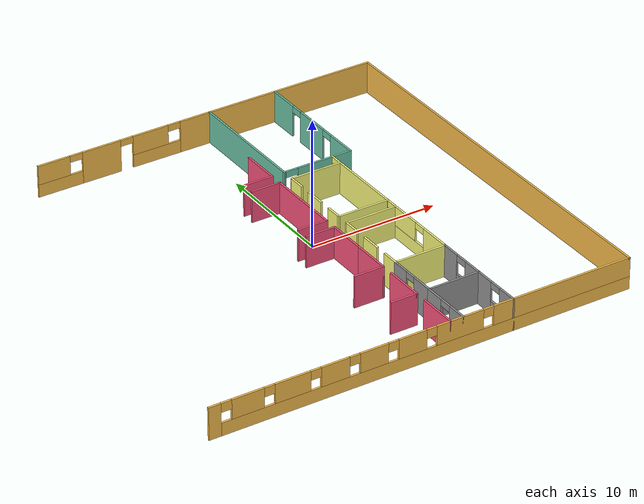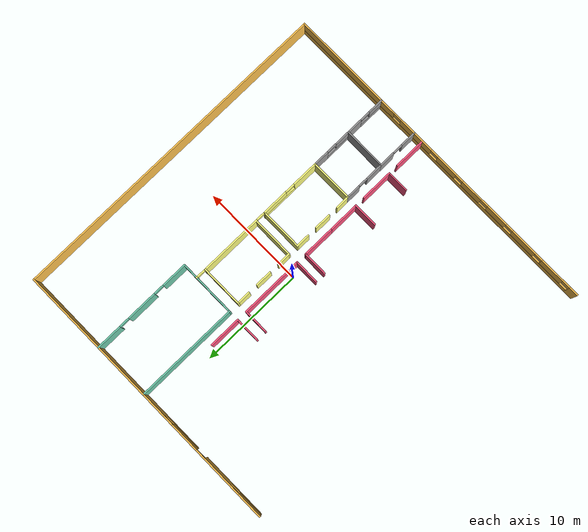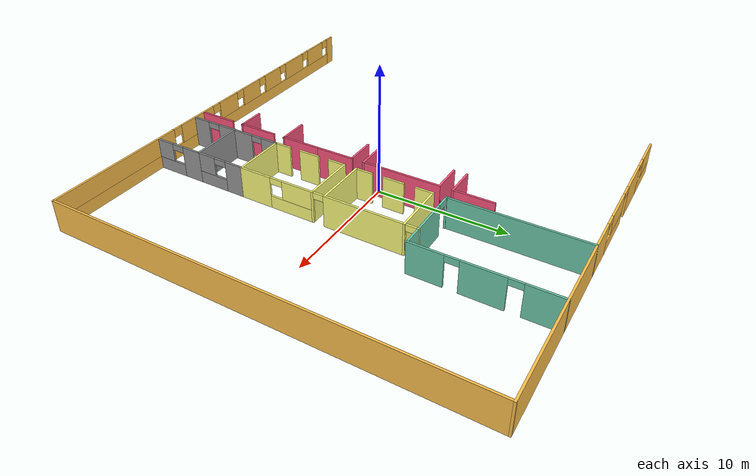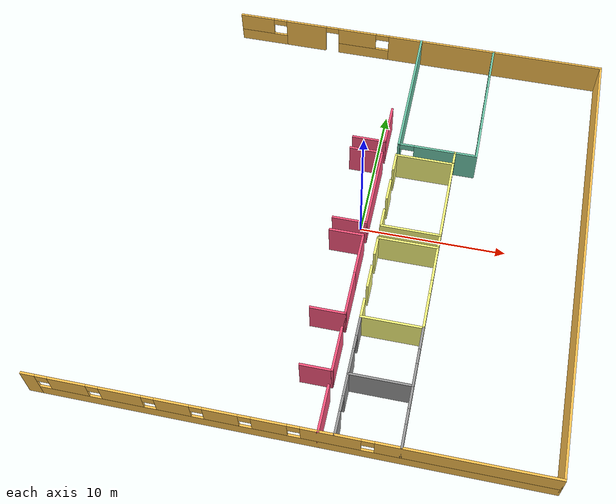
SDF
<sdf version="1.6">
 <model name="myWorld">
  <pose>-1.5 0 0 0 -0 0</pose>
  <link name="Wall_0">
   <pose>0 -16 0 0 -0 0</pose>
   <visual name="Wall_0_Visual_0">
    <pose>-16.1125 0 1.25 0 -0 0</pose>
    <geometry><box><size>0.925 0.15 2.5</size></box></geometry>
    <material>
     <script><uri>file://media/materials/scripts/gazebo.material</uri><name>Gazebo/Grey</name></script>
     <ambient>1 0.764706 0.305882 1</ambient>
    </material>
    <meta><layer>0</layer></meta>
   </visual>
   <collision name="Wall_0_Collision_0">
    <geometry><box><size>0.925 0.15 2.5</size></box></geometry>
    <pose>-16.1125 0 1.25 0 -0 0</pose>
   </collision>
   <visual name="Wall_0_Visual_1">
    <pose>0.4625 0 0.5 0 -0 0</pose>
    <geometry><box><size>32.225 0.15 1</size></box></geometry>
    <material>
     <script><uri>file://media/materials/scripts/gazebo.material</uri><name>Gazebo/Grey</name></script>
     <ambient>1 0.764706 0.305882 1</ambient>
    </material>
    <meta><layer>0</layer></meta>
   </visual>
   <collision name="Wall_0_Collision_1">
    <geometry><box><size>32.225 0.15 1</size></box></geometry>
    <pose>0.4625 0 0.5 0 -0 0</pose>
   </collision>
   <visual name="Wall_0_Visual_2">
    <pose>-13.625 0 1.75 0 -0 0</pose>
    <geometry><box><size>2.45 0.15 1.5</size></box></geometry>
    <material>
     <script><uri>file://media/materials/scripts/gazebo.material</uri><name>Gazebo/Grey</name></script>
     <ambient>1 0.764706 0.305882 1</ambient>
    </material>
    <meta><layer>0</layer></meta>
   </visual>
   <collision name="Wall_0_Collision_2">
    <geometry><box><size>2.45 0.15 1.5</size></box></geometry>
    <pose>-13.625 0 1.75 0 -0 0</pose>
   </collision>
   <visual name="Wall_0_Visual_3">
    <pose>-10.25 0 1.75 0 -0 0</pose>
    <geometry><box><size>2.7 0.15 1.5</size></box></geometry>
    <material>
     <script><uri>file://media/materials/scripts/gazebo.material</uri><name>Gazebo/Grey</name></script>
     <ambient>1 0.764706 0.305882 1</ambient>
    </material>
    <meta><layer>0</layer></meta>
   </visual>
   <collision name="Wall_0_Collision_3">
    <geometry><box><size>2.7 0.15 1.5</size></box></geometry>
    <pose>-10.25 0 1.75 0 -0 0</pose>
   </collision>
   <visual name="Wall_0_Visual_4">
    <pose>-7 0 1.75 0 -0 0</pose>
    <geometry><box><size>2.2 0.15 1.5</size></box></geometry>
    <material>
     <script><uri>file://media/materials/scripts/gazebo.material</uri><name>Gazebo/Grey</name></script>
     <ambient>1 0.764706 0.305882 1</ambient>
    </material>
    <meta><layer>0</layer></meta>
   </visual>
   <collision name="Wall_0_Collision_4">
    <geometry><box><size>2.2 0.15 1.5</size></box></geometry>
    <pose>-7 0 1.75 0 -0 0</pose>
   </collision>
   <visual name="Wall_0_Visual_5">
    <pose>-4 0 1.75 0 -0 0</pose>
    <geometry><box><size>2.2 0.15 1.5</size></box></geometry>
    <material>
     <script><uri>file://media/materials/scripts/gazebo.material</uri><name>Gazebo/Grey</name></script>
     <ambient>1 0.764706 0.305882 1</ambient>
    </material>
    <meta><layer>0</layer></meta>
   </visual>
   <collision name="Wall_0_Collision_5">
    <geometry><box><size>2.2 0.15 1.5</size></box></geometry>
    <pose>-4 0 1.75 0 -0 0</pose>
   </collision>
   <visual name="Wall_0_Visual_6">
    <pose>-1 0 1.75 0 -0 0</pose>
    <geometry><box><size>2.2 0.15 1.5</size></box></geometry>
    <material>
     <script><uri>file://media/materials/scripts/gazebo.material</uri><name>Gazebo/Grey</name></script>
     <ambient>1 0.764706 0.305882 1</ambient>
    </material>
    <meta><layer>0</layer></meta>
   </visual>
   <collision name="Wall_0_Collision_6">
    <geometry><box><size>2.2 0.15 1.5</size></box></geometry>
    <pose>-1 0 1.75 0 -0 0</pose>
   </collision>
   <visual name="Wall_0_Visual_7">
    <pose>2.75 0 1.75 0 -0 0</pose>
    <geometry><box><size>3.7 0.15 1.5</size></box></geometry>
    <material>
     <script><uri>file://media/materials/scripts/gazebo.material</uri><name>Gazebo/Grey</name></script>
     <ambient>1 0.764706 0.305882 1</ambient>
    </material>
    <meta><layer>0</layer></meta>
   </visual>
   <collision name="Wall_0_Collision_7">
    <geometry><box><size>3.7 0.15 1.5</size></box></geometry>
    <pose>2.75 0 1.75 0 -0 0</pose>
   </collision>
   <visual name="Wall_0_Visual_8">
    <pose>10.9875 0 1.75 0 -0 0</pose>
    <geometry><box><size>11.175 0.15 1.5</size></box></geometry>
    <material>
     <script><uri>file://media/materials/scripts/gazebo.material</uri><name>Gazebo/Grey</name></script>
     <ambient>1 0.764706 0.305882 1</ambient>
    </material>
    <meta><layer>0</layer></meta>
   </visual>
   <collision name="Wall_0_Collision_8">
    <geometry><box><size>11.175 0.15 1.5</size></box></geometry>
    <pose>10.9875 0 1.75 0 -0 0</pose>
   </collision>
   <visual name="Wall_0_Visual_9">
    <pose>-15.25 0 2.15 0 -0 0</pose>
    <geometry><box><size>0.8 0.15 0.7</size></box></geometry>
    <material>
     <script><uri>file://media/materials/scripts/gazebo.material</uri><name>Gazebo/Grey</name></script>
     <ambient>1 0.764706 0.305882 1</ambient>
    </material>
    <meta><layer>0</layer></meta>
   </visual>
   <collision name="Wall_0_Collision_9">
    <geometry><box><size>0.8 0.15 0.7</size></box></geometry>
    <pose>-15.25 0 2.15 0 -0 0</pose>
   </collision>
   <visual name="Wall_0_Visual_10">
    <pose>-12 0 2.15 0 -0 0</pose>
    <geometry><box><size>0.8 0.15 0.7</size></box></geometry>
    <material>
     <script><uri>file://media/materials/scripts/gazebo.material</uri><name>Gazebo/Grey</name></script>
     <ambient>1 0.764706 0.305882 1</ambient>
    </material>
    <meta><layer>0</layer></meta>
   </visual>
   <collision name="Wall_0_Collision_10">
    <geometry><box><size>0.8 0.15 0.7</size></box></geometry>
    <pose>-12 0 2.15 0 -0 0</pose>
   </collision>
   <visual name="Wall_0_Visual_11">
    <pose>-8.5 0 2.15 0 -0 0</pose>
    <geometry><box><size>0.8 0.15 0.7</size></box></geometry>
    <material>
     <script><uri>file://media/materials/scripts/gazebo.material</uri><name>Gazebo/Grey</name></script>
     <ambient>1 0.764706 0.305882 1</ambient>
    </material>
    <meta><layer>0</layer></meta>
   </visual>
   <collision name="Wall_0_Collision_11">
    <geometry><box><size>0.8 0.15 0.7</size></box></geometry>
    <pose>-8.5 0 2.15 0 -0 0</pose>
   </collision>
   <visual name="Wall_0_Visual_12">
    <pose>-5.5 0 2.15 0 -0 0</pose>
    <geometry><box><size>0.8 0.15 0.7</size></box></geometry>
    <material>
     <script><uri>file://media/materials/scripts/gazebo.material</uri><name>Gazebo/Grey</name></script>
     <ambient>1 0.764706 0.305882 1</ambient>
    </material>
    <meta><layer>0</layer></meta>
   </visual>
   <collision name="Wall_0_Collision_12">
    <geometry><box><size>0.8 0.15 0.7</size></box></geometry>
    <pose>-5.5 0 2.15 0 -0 0</pose>
   </collision>
   <visual name="Wall_0_Visual_13">
    <pose>-2.5 0 2.15 0 -0 0</pose>
    <geometry><box><size>0.8 0.15 0.7</size></box></geometry>
    <material>
     <script><uri>file://media/materials/scripts/gazebo.material</uri><name>Gazebo/Grey</name></script>
     <ambient>1 0.764706 0.305882 1</ambient>
    </material>
    <meta><layer>0</layer></meta>
   </visual>
   <collision name="Wall_0_Collision_13">
    <geometry><box><size>0.8 0.15 0.7</size></box></geometry>
    <pose>-2.5 0 2.15 0 -0 0</pose>
   </collision>
   <visual name="Wall_0_Visual_14">
    <pose>0.5 0 2.15 0 -0 0</pose>
    <geometry><box><size>0.8 0.15 0.7</size></box></geometry>
    <material>
     <script><uri>file://media/materials/scripts/gazebo.material</uri><name>Gazebo/Grey</name></script>
     <ambient>1 0.764706 0.305882 1</ambient>
    </material>
    <meta><layer>0</layer></meta>
   </visual>
   <collision name="Wall_0_Collision_14">
    <geometry><box><size>0.8 0.15 0.7</size></box></geometry>
    <pose>0.5 0 2.15 0 -0 0</pose>
   </collision>
   <visual name="Wall_0_Visual_15">
    <pose>5 0 2.15 0 -0 0</pose>
    <geometry><box><size>0.8 0.15 0.7</size></box></geometry>
    <material>
     <script><uri>file://media/materials/scripts/gazebo.material</uri><name>Gazebo/Grey</name></script>
     <ambient>1 0.764706 0.305882 1</ambient>
    </material>
    <meta><layer>0</layer></meta>
   </visual>
   <collision name="Wall_0_Collision_15">
    <geometry><box><size>0.8 0.15 0.7</size></box></geometry>
    <pose>5 0 2.15 0 -0 0</pose>
   </collision>
  </link>
  <link name="Wall_110">
   <collision name="Wall_110_Collision">
    <geometry><box><size>3.15 0.15 2.5</size></box></geometry>
    <pose>0 0 1.25 0 -0 0</pose>
   </collision>
   <visual name="Wall_110_Visual">
    <pose>0 0 1.25 0 -0 0</pose>
    <geometry><box><size>3.15 0.15 2.5</size></box></geometry>
    <material>
     <script><uri>file://media/materials/scripts/gazebo.material</uri><name>Gazebo/Grey</name></script>
     <ambient>1 0.333333 0.498039 1</ambient>
    </material>
    <meta><layer>0</layer></meta>
   </visual>
   <pose>2 -10.5 0 0 0 -1.5708</pose>
  </link>
  <link name="Wall_120">
   <collision name="Wall_120_Collision">
    <geometry><box><size>2.15 0.15 2.5</size></box></geometry>
    <pose>0 0 1.25 0 -0 0</pose>
   </collision>
   <visual name="Wall_120_Visual">
    <pose>0 0 1.25 0 -0 0</pose>
    <geometry><box><size>2.15 0.15 2.5</size></box></geometry>
    <material>
     <script><uri>file://media/materials/scripts/gazebo.material</uri><name>Gazebo/Grey</name></script>
     <ambient>1 0.333333 0.498039 1</ambient>
    </material>
    <meta><layer>0</layer></meta>
   </visual>
   <pose>1 -12 0 0 -0 0</pose>
  </link>
  <link name="Wall_127">
   <collision name="Wall_127_Collision">
    <geometry><box><size>3.15 0.15 2.5</size></box></geometry>
    <pose>0 0 1.25 0 -0 0</pose>
   </collision>
   <visual name="Wall_127_Visual">
    <pose>0 0 1.25 0 -0 0</pose>
    <geometry><box><size>3.15 0.15 2.5</size></box></geometry>
    <material>
     <script><uri>file://media/materials/scripts/gazebo.material</uri><name>Gazebo/Grey</name></script>
     <ambient>1 0.333333 0.498039 1</ambient>
    </material>
    <meta><layer>0</layer></meta>
   </visual>
   <pose>2 -6.5 0 0 0 -1.5708</pose>
  </link>
  <link name="Wall_128">
   <collision name="Wall_128_Collision">
    <geometry><box><size>2.4 0.15 2.5</size></box></geometry>
    <pose>0 0 1.25 0 -0 0</pose>
   </collision>
   <visual name="Wall_128_Visual">
    <pose>0 0 1.25 0 -0 0</pose>
    <geometry><box><size>2.4 0.15 2.5</size></box></geometry>
    <material>
     <script><uri>file://media/materials/scripts/gazebo.material</uri><name>Gazebo/Grey</name></script>
     <ambient>1 0.333333 0.498039 1</ambient>
    </material>
    <meta><layer>0</layer></meta>
   </visual>
   <pose>0.875 -8 0 0 -0 3.14159</pose>
  </link>
  <link name="Wall_132">
   <collision name="Wall_132_Collision">
    <geometry><box><size>2.4 0.15 2.5</size></box></geometry>
    <pose>0 0 1.25 0 -0 0</pose>
   </collision>
   <visual name="Wall_132_Visual">
    <pose>0 0 1.25 0 -0 0</pose>
    <geometry><box><size>2.4 0.15 2.5</size></box></geometry>
    <material>
     <script><uri>file://media/materials/scripts/gazebo.material</uri><name>Gazebo/Grey</name></script>
     <ambient>1 0.333333 0.498039 1</ambient>
    </material>
    <meta><layer>0</layer></meta>
   </visual>
   <pose>0.875 -2 0 0 -0 0</pose>
  </link>
  <link name="Wall_133">
   <collision name="Wall_133_Collision">
    <geometry><box><size>3.15 0.15 2.5</size></box></geometry>
    <pose>0 0 1.25 0 -0 0</pose>
   </collision>
   <visual name="Wall_133_Visual">
    <pose>0 0 1.25 0 -0 0</pose>
    <geometry><box><size>3.15 0.15 2.5</size></box></geometry>
    <material>
     <script><uri>file://media/materials/scripts/gazebo.material</uri><name>Gazebo/Grey</name></script>
     <ambient>1 0.333333 0.498039 1</ambient>
    </material>
    <meta><layer>0</layer></meta>
   </visual>
   <pose>2 -3.5 0 0 0 -1.5708</pose>
  </link>
  <link name="Wall_137">
   <collision name="Wall_137_Collision">
    <geometry><box><size>2.4 0.15 2.5</size></box></geometry>
    <pose>0 0 1.25 0 -0 0</pose>
   </collision>
   <visual name="Wall_137_Visual">
    <pose>0 0 1.25 0 -0 0</pose>
    <geometry><box><size>2.4 0.15 2.5</size></box></geometry>
    <material>
     <script><uri>file://media/materials/scripts/gazebo.material</uri><name>Gazebo/Grey</name></script>
     <ambient>1 0.333333 0.498039 1</ambient>
    </material>
    <meta><layer>0</layer></meta>
   </visual>
   <pose>0.875 5 0 0 -0 0</pose>
  </link>
  <link name="Wall_138">
   <collision name="Wall_138_Collision">
    <geometry><box><size>6.15 0.15 2.5</size></box></geometry>
    <pose>0 0 1.25 0 -0 0</pose>
   </collision>
   <visual name="Wall_138_Visual">
    <pose>0 0 1.25 0 -0 0</pose>
    <geometry><box><size>6.15 0.15 2.5</size></box></geometry>
    <material>
     <script><uri>file://media/materials/scripts/gazebo.material</uri><name>Gazebo/Grey</name></script>
     <ambient>1 0.333333 0.498039 1</ambient>
    </material>
    <meta><layer>0</layer></meta>
   </visual>
   <pose>2 2 0 0 0 -1.5708</pose>
  </link>
  <link name="Wall_139">
   <collision name="Wall_139_Collision">
    <geometry><box><size>2.4 0.15 2.5</size></box></geometry>
    <pose>0 0 1.25 0 -0 0</pose>
   </collision>
   <visual name="Wall_139_Visual">
    <pose>0 0 1.25 0 -0 0</pose>
    <geometry><box><size>2.4 0.15 2.5</size></box></geometry>
    <material>
     <script><uri>file://media/materials/scripts/gazebo.material</uri><name>Gazebo/Grey</name></script>
     <ambient>1 0.333333 0.498039 1</ambient>
    </material>
    <meta><layer>0</layer></meta>
   </visual>
   <pose>0.875 -1 0 0 -0 3.14159</pose>
  </link>
  <link name="Wall_144">
   <collision name="Wall_144_Collision">
    <geometry><box><size>3.15 0.15 2.5</size></box></geometry>
    <pose>0 0 1.25 0 -0 0</pose>
   </collision>
   <visual name="Wall_144_Visual">
    <pose>0 0 1.25 0 -0 0</pose>
    <geometry><box><size>3.15 0.15 2.5</size></box></geometry>
    <material>
     <script><uri>file://media/materials/scripts/gazebo.material</uri><name>Gazebo/Grey</name></script>
     <ambient>1 0.333333 0.498039 1</ambient>
    </material>
    <meta><layer>0</layer></meta>
   </visual>
   <pose>2 7.5 0 0 0 -1.5708</pose>
  </link>
  <link name="Wall_145">
   <collision name="Wall_145_Collision">
    <geometry><box><size>2.4 0.15 2.5</size></box></geometry>
    <pose>0 0 1.25 0 -0 0</pose>
   </collision>
   <visual name="Wall_145_Visual">
    <pose>0 0 1.25 0 -0 0</pose>
    <geometry><box><size>2.4 0.15 2.5</size></box></geometry>
    <material>
     <script><uri>file://media/materials/scripts/gazebo.material</uri><name>Gazebo/Grey</name></script>
     <ambient>1 0.333333 0.498039 1</ambient>
    </material>
    <meta><layer>0</layer></meta>
   </visual>
   <pose>0.875 6 0 0 -0 3.14159</pose>
  </link>
  <link name="Wall_151">
   <pose>3 -14 0 0 -0 1.5708</pose>
   <visual name="Wall_151_Visual_0">
    <pose>-1.2875 0 1.25 0 -0 0</pose>
    <geometry><box><size>1.575 0.15 2.5</size></box></geometry>
    <material>
     <script><uri>file://media/materials/scripts/gazebo.material</uri><name>Gazebo/Grey</name></script>
     <ambient>1 1 1 1</ambient>
    </material>
    <meta><layer>0</layer></meta>
   </visual>
   <collision name="Wall_151_Collision_0">
    <geometry><box><size>1.575 0.15 2.5</size></box></geometry>
    <pose>-1.2875 0 1.25 0 -0 0</pose>
   </collision>
   <visual name="Wall_151_Visual_1">
    <pose>1.2875 0 1.25 0 -0 0</pose>
    <geometry><box><size>1.575 0.15 2.5</size></box></geometry>
    <material>
     <script><uri>file://media/materials/scripts/gazebo.material</uri><name>Gazebo/Grey</name></script>
     <ambient>1 1 1 1</ambient>
    </material>
    <meta><layer>0</layer></meta>
   </visual>
   <collision name="Wall_151_Collision_1">
    <geometry><box><size>1.575 0.15 2.5</size></box></geometry>
    <pose>1.2875 0 1.25 0 -0 0</pose>
   </collision>
   <visual name="Wall_151_Visual_2">
    <pose>0 0 2.25 0 -0 0</pose>
    <geometry><box><size>1 0.15 0.5</size></box></geometry>
    <material>
     <script><uri>file://media/materials/scripts/gazebo.material</uri><name>Gazebo/Grey</name></script>
     <ambient>1 1 1 1</ambient>
    </material>
    <meta><layer>0</layer></meta>
   </visual>
   <collision name="Wall_151_Collision_2">
    <geometry><box><size>1 0.15 0.5</size></box></geometry>
    <pose>0 0 2.25 0 -0 0</pose>
   </collision>
  </link>
  <link name="Wall_152">
   <collision name="Wall_152_Collision">
    <geometry><box><size>4.15 0.15 2.5</size></box></geometry>
    <pose>0 0 1.25 0 -0 0</pose>
   </collision>
   <visual name="Wall_152_Visual">
    <pose>0 0 1.25 0 -0 0</pose>
    <geometry><box><size>4.15 0.15 2.5</size></box></geometry>
    <material>
     <script><uri>file://media/materials/scripts/gazebo.material</uri><name>Gazebo/Grey</name></script>
     <ambient>1 1 1 1</ambient>
    </material>
    <meta><layer>0</layer></meta>
   </visual>
   <pose>5 -12 0 0 -0 0</pose>
  </link>
  <link name="Wall_153">
   <pose>7 -14 0 0 0 -1.5708</pose>
   <visual name="Wall_153_Visual_0">
    <pose>-1.2825 0 1.25 0 -0 0</pose>
    <geometry><box><size>1.585 0.15 2.5</size></box></geometry>
    <material>
     <script><uri>file://media/materials/scripts/gazebo.material</uri><name>Gazebo/Grey</name></script>
     <ambient>1 1 1 1</ambient>
    </material>
    <meta><layer>0</layer></meta>
   </visual>
   <collision name="Wall_153_Collision_0">
    <geometry><box><size>1.585 0.15 2.5</size></box></geometry>
    <pose>-1.2825 0 1.25 0 -0 0</pose>
   </collision>
   <visual name="Wall_153_Visual_1">
    <pose>0.7925 0 0.5 0 -0 0</pose>
    <geometry><box><size>2.565 0.15 1</size></box></geometry>
    <material>
     <script><uri>file://media/materials/scripts/gazebo.material</uri><name>Gazebo/Grey</name></script>
     <ambient>1 1 1 1</ambient>
    </material>
    <meta><layer>0</layer></meta>
   </visual>
   <collision name="Wall_153_Collision_1">
    <geometry><box><size>2.565 0.15 1</size></box></geometry>
    <pose>0.7925 0 0.5 0 -0 0</pose>
   </collision>
   <visual name="Wall_153_Visual_2">
    <pose>1.2925 0 1.75 0 -0 0</pose>
    <geometry><box><size>1.565 0.15 1.5</size></box></geometry>
    <material>
     <script><uri>file://media/materials/scripts/gazebo.material</uri><name>Gazebo/Grey</name></script>
     <ambient>1 1 1 1</ambient>
    </material>
    <meta><layer>0</layer></meta>
   </visual>
   <collision name="Wall_153_Collision_2">
    <geometry><box><size>1.565 0.15 1.5</size></box></geometry>
    <pose>1.2925 0 1.75 0 -0 0</pose>
   </collision>
   <visual name="Wall_153_Visual_3">
    <pose>0.01 0 2.25 0 -0 0</pose>
    <geometry><box><size>1 0.15 0.5</size></box></geometry>
    <material>
     <script><uri>file://media/materials/scripts/gazebo.material</uri><name>Gazebo/Grey</name></script>
     <ambient>1 1 1 1</ambient>
    </material>
    <meta><layer>0</layer></meta>
   </visual>
   <collision name="Wall_153_Collision_3">
    <geometry><box><size>1 0.15 0.5</size></box></geometry>
    <pose>0.01 0 2.25 0 -0 0</pose>
   </collision>
  </link>
  <link name="Wall_157">
   <pose>3 -10 0 0 -0 1.5708</pose>
   <visual name="Wall_157_Visual_0">
    <pose>-1.1775 0 1.25 0 -0 0</pose>
    <geometry><box><size>1.795 0.15 2.5</size></box></geometry>
    <material>
     <script><uri>file://media/materials/scripts/gazebo.material</uri><name>Gazebo/Grey</name></script>
     <ambient>1 1 1 1</ambient>
    </material>
    <meta><layer>0</layer></meta>
   </visual>
   <collision name="Wall_157_Collision_0">
    <geometry><box><size>1.795 0.15 2.5</size></box></geometry>
    <pose>-1.1775 0 1.25 0 -0 0</pose>
   </collision>
   <visual name="Wall_157_Visual_1">
    <pose>1.3475 0 1.25 0 -0 0</pose>
    <geometry><box><size>1.455 0.15 2.5</size></box></geometry>
    <material>
     <script><uri>file://media/materials/scripts/gazebo.material</uri><name>Gazebo/Grey</name></script>
     <ambient>1 1 1 1</ambient>
    </material>
    <meta><layer>0</layer></meta>
   </visual>
   <collision name="Wall_157_Collision_1">
    <geometry><box><size>1.455 0.15 2.5</size></box></geometry>
    <pose>1.3475 0 1.25 0 -0 0</pose>
   </collision>
   <visual name="Wall_157_Visual_2">
    <pose>0.17 0 2.25 0 -0 0</pose>
    <geometry><box><size>0.9 0.15 0.5</size></box></geometry>
    <material>
     <script><uri>file://media/materials/scripts/gazebo.material</uri><name>Gazebo/Grey</name></script>
     <ambient>1 1 1 1</ambient>
    </material>
    <meta><layer>0</layer></meta>
   </visual>
   <collision name="Wall_157_Collision_2">
    <geometry><box><size>0.9 0.15 0.5</size></box></geometry>
    <pose>0.17 0 2.25 0 -0 0</pose>
   </collision>
  </link>
  <link name="Wall_158">
   <collision name="Wall_158_Collision">
    <geometry><box><size>4.15 0.15 2.5</size></box></geometry>
    <pose>0 0 1.25 0 -0 0</pose>
   </collision>
   <visual name="Wall_158_Visual">
    <pose>0 0 1.25 0 -0 0</pose>
    <geometry><box><size>4.15 0.15 2.5</size></box></geometry>
    <material>
     <script><uri>file://media/materials/scripts/gazebo.material</uri><name>Gazebo/Grey</name></script>
     <ambient>1 1 0.498039 1</ambient>
    </material>
    <meta><layer>0</layer></meta>
   </visual>
   <pose>5 -8 0 0 -0 0</pose>
  </link>
  <link name="Wall_159">
   <pose>7 -10 0 0 0 -1.5708</pose>
   <visual name="Wall_159_Visual_0">
    <pose>-1.2875 0 1.25 0 -0 0</pose>
    <geometry><box><size>1.575 0.15 2.5</size></box></geometry>
    <material>
     <script><uri>file://media/materials/scripts/gazebo.material</uri><name>Gazebo/Grey</name></script>
     <ambient>1 1 1 1</ambient>
    </material>
    <meta><layer>0</layer></meta>
   </visual>
   <collision name="Wall_159_Collision_0">
    <geometry><box><size>1.575 0.15 2.5</size></box></geometry>
    <pose>-1.2875 0 1.25 0 -0 0</pose>
   </collision>
   <visual name="Wall_159_Visual_1">
    <pose>0.7875 0 0.5 0 -0 0</pose>
    <geometry><box><size>2.575 0.15 1</size></box></geometry>
    <material>
     <script><uri>file://media/materials/scripts/gazebo.material</uri><name>Gazebo/Grey</name></script>
     <ambient>1 1 1 1</ambient>
    </material>
    <meta><layer>0</layer></meta>
   </visual>
   <collision name="Wall_159_Collision_1">
    <geometry><box><size>2.575 0.15 1</size></box></geometry>
    <pose>0.7875 0 0.5 0 -0 0</pose>
   </collision>
   <visual name="Wall_159_Visual_2">
    <pose>1.2875 0 1.75 0 -0 0</pose>
    <geometry><box><size>1.575 0.15 1.5</size></box></geometry>
    <material>
     <script><uri>file://media/materials/scripts/gazebo.material</uri><name>Gazebo/Grey</name></script>
     <ambient>1 1 1 1</ambient>
    </material>
    <meta><layer>0</layer></meta>
   </visual>
   <collision name="Wall_159_Collision_2">
    <geometry><box><size>1.575 0.15 1.5</size></box></geometry>
    <pose>1.2875 0 1.75 0 -0 0</pose>
   </collision>
   <visual name="Wall_159_Visual_3">
    <pose>0 0 2.25 0 -0 0</pose>
    <geometry><box><size>1 0.15 0.5</size></box></geometry>
    <material>
     <script><uri>file://media/materials/scripts/gazebo.material</uri><name>Gazebo/Grey</name></script>
     <ambient>1 1 1 1</ambient>
    </material>
    <meta><layer>0</layer></meta>
   </visual>
   <collision name="Wall_159_Collision_3">
    <geometry><box><size>1 0.15 0.5</size></box></geometry>
    <pose>0 0 2.25 0 -0 0</pose>
   </collision>
  </link>
  <link name="Wall_161">
   <pose>7 -5 0 0 -0 1.5708</pose>
   <visual name="Wall_161_Visual_0">
    <pose>-1.7875 0 1.25 0 -0 0</pose>
    <geometry><box><size>2.575 0.15 2.5</size></box></geometry>
    <material>
     <script><uri>file://media/materials/scripts/gazebo.material</uri><name>Gazebo/Grey</name></script>
     <ambient>1 1 0.498039 1</ambient>
    </material>
    <meta><layer>0</layer></meta>
   </visual>
   <collision name="Wall_161_Collision_0">
    <geometry><box><size>2.575 0.15 2.5</size></box></geometry>
    <pose>-1.7875 0 1.25 0 -0 0</pose>
   </collision>
   <visual name="Wall_161_Visual_1">
    <pose>1.2875 0 0.5 0 -0 0</pose>
    <geometry><box><size>3.575 0.15 1</size></box></geometry>
    <material>
     <script><uri>file://media/materials/scripts/gazebo.material</uri><name>Gazebo/Grey</name></script>
     <ambient>1 1 0.498039 1</ambient>
    </material>
    <meta><layer>0</layer></meta>
   </visual>
   <collision name="Wall_161_Collision_1">
    <geometry><box><size>3.575 0.15 1</size></box></geometry>
    <pose>1.2875 0 0.5 0 -0 0</pose>
   </collision>
   <visual name="Wall_161_Visual_2">
    <pose>1.7875 0 1.75 0 -0 0</pose>
    <geometry><box><size>2.575 0.15 1.5</size></box></geometry>
    <material>
     <script><uri>file://media/materials/scripts/gazebo.material</uri><name>Gazebo/Grey</name></script>
     <ambient>1 1 0.498039 1</ambient>
    </material>
    <meta><layer>0</layer></meta>
   </visual>
   <collision name="Wall_161_Collision_2">
    <geometry><box><size>2.575 0.15 1.5</size></box></geometry>
    <pose>1.7875 0 1.75 0 -0 0</pose>
   </collision>
   <visual name="Wall_161_Visual_3">
    <pose>1.7875 0 1.75 0 -0 0</pose>
    <geometry><box><size>2.575 0.15 1.5</size></box></geometry>
    <material>
     <script><uri>file://media/materials/scripts/gazebo.material</uri><name>Gazebo/Grey</name></script>
     <ambient>1 1 0.498039 1</ambient>
    </material>
    <meta><layer>0</layer></meta>
   </visual>
   <collision name="Wall_161_Collision_3">
    <geometry><box><size>2.575 0.15 1.5</size></box></geometry>
    <pose>1.7875 0 1.75 0 -0 0</pose>
   </collision>
   <visual name="Wall_161_Visual_4">
    <pose>0 0 2.25 0 -0 0</pose>
    <geometry><box><size>1 0.15 0.5</size></box></geometry>
    <material>
     <script><uri>file://media/materials/scripts/gazebo.material</uri><name>Gazebo/Grey</name></script>
     <ambient>1 1 0.498039 1</ambient>
    </material>
    <meta><layer>0</layer></meta>
   </visual>
   <collision name="Wall_161_Collision_4">
    <geometry><box><size>1 0.15 0.5</size></box></geometry>
    <pose>0 0 2.25 0 -0 0</pose>
   </collision>
  </link>
  <link name="Wall_163">
   <collision name="Wall_163_Collision">
    <geometry><box><size>4.15 0.15 2.5</size></box></geometry>
    <pose>0 0 1.25 0 -0 0</pose>
   </collision>
   <visual name="Wall_163_Visual">
    <pose>0 0 1.25 0 -0 0</pose>
    <geometry><box><size>4.15 0.15 2.5</size></box></geometry>
    <material>
     <script><uri>file://media/materials/scripts/gazebo.material</uri><name>Gazebo/Grey</name></script>
     <ambient>1 1 0.498039 1</ambient>
    </material>
    <meta><layer>0</layer></meta>
   </visual>
   <pose>5 -2 0 0 -0 3.14159</pose>
  </link>
  <link name="Wall_165">
   <collision name="Wall_165_Collision">
    <geometry><box><size>1.4 0.15 2.5</size></box></geometry>
    <pose>0 0 1.25 0 -0 0</pose>
   </collision>
   <visual name="Wall_165_Visual">
    <pose>0 0 1.25 0 -0 0</pose>
    <geometry><box><size>1.4 0.15 2.5</size></box></geometry>
    <material>
     <script><uri>file://media/materials/scripts/gazebo.material</uri><name>Gazebo/Grey</name></script>
     <ambient>1 1 0.498039 1</ambient>
    </material>
    <meta><layer>0</layer></meta>
   </visual>
   <pose>3 -2.625 0 0 0 -1.5708</pose>
  </link>
  <link name="Wall_167">
   <collision name="Wall_167_Collision">
    <geometry><box><size>1.65 0.15 2.5</size></box></geometry>
    <pose>0 0 1.25 0 -0 0</pose>
   </collision>
   <visual name="Wall_167_Visual">
    <pose>0 0 1.25 0 -0 0</pose>
    <geometry><box><size>1.65 0.15 2.5</size></box></geometry>
    <material>
     <script><uri>file://media/materials/scripts/gazebo.material</uri><name>Gazebo/Grey</name></script>
     <ambient>1 1 0.498039 1</ambient>
    </material>
    <meta><layer>0</layer></meta>
   </visual>
   <pose>3 -5 0 0 0 -1.5708</pose>
  </link>
  <link name="Wall_169">
   <collision name="Wall_169_Collision">
    <geometry><box><size>1.4 0.15 2.5</size></box></geometry>
    <pose>0 0 1.25 0 -0 0</pose>
   </collision>
   <visual name="Wall_169_Visual">
    <pose>0 0 1.25 0 -0 0</pose>
    <geometry><box><size>1.4 0.15 2.5</size></box></geometry>
    <material>
     <script><uri>file://media/materials/scripts/gazebo.material</uri><name>Gazebo/Grey</name></script>
     <ambient>1 1 0.498039 1</ambient>
    </material>
    <meta><layer>0</layer></meta>
   </visual>
   <pose>3 -7.375 0 0 -0 1.5708</pose>
  </link>
  <link name="Wall_171">
   <pose>7 2 0 0 -0 1.5708</pose>
   <visual name="Wall_171_Visual_0">
    <pose>-3.9875 0 1.25 0 -0 0</pose>
    <geometry><box><size>0.175 0.15 2.5</size></box></geometry>
    <material>
     <script><uri>file://media/materials/scripts/gazebo.material</uri><name>Gazebo/Grey</name></script>
     <ambient>1 1 0.498039 1</ambient>
    </material>
    <meta><layer>0</layer></meta>
   </visual>
   <collision name="Wall_171_Collision_0">
    <geometry><box><size>0.175 0.15 2.5</size></box></geometry>
    <pose>-3.9875 0 1.25 0 -0 0</pose>
   </collision>
   <visual name="Wall_171_Visual_1">
    <pose>-0 0 1.25 0 -0 0</pose>
    <geometry><box><size>6.2 0.15 2.5</size></box></geometry>
    <material>
     <script><uri>file://media/materials/scripts/gazebo.material</uri><name>Gazebo/Grey</name></script>
     <ambient>1 1 0.498039 1</ambient>
    </material>
    <meta><layer>0</layer></meta>
   </visual>
   <collision name="Wall_171_Collision_1">
    <geometry><box><size>6.2 0.15 2.5</size></box></geometry>
    <pose>-0 0 1.25 0 -0 0</pose>
   </collision>
   <visual name="Wall_171_Visual_2">
    <pose>3.9875 0 1.25 0 -0 0</pose>
    <geometry><box><size>0.175 0.15 2.5</size></box></geometry>
    <material>
     <script><uri>file://media/materials/scripts/gazebo.material</uri><name>Gazebo/Grey</name></script>
     <ambient>1 1 0.498039 1</ambient>
    </material>
    <meta><layer>0</layer></meta>
   </visual>
   <collision name="Wall_171_Collision_2">
    <geometry><box><size>0.175 0.15 2.5</size></box></geometry>
    <pose>3.9875 0 1.25 0 -0 0</pose>
   </collision>
   <visual name="Wall_171_Visual_3">
    <pose>-3.5 0 2.25 0 -0 0</pose>
    <geometry><box><size>0.8 0.15 0.5</size></box></geometry>
    <material>
     <script><uri>file://media/materials/scripts/gazebo.material</uri><name>Gazebo/Grey</name></script>
     <ambient>1 1 0.498039 1</ambient>
    </material>
    <meta><layer>0</layer></meta>
   </visual>
   <collision name="Wall_171_Collision_3">
    <geometry><box><size>0.8 0.15 0.5</size></box></geometry>
    <pose>-3.5 0 2.25 0 -0 0</pose>
   </collision>
   <visual name="Wall_171_Visual_4">
    <pose>3.5 0 2.25 0 -0 0</pose>
    <geometry><box><size>0.8 0.15 0.5</size></box></geometry>
    <material>
     <script><uri>file://media/materials/scripts/gazebo.material</uri><name>Gazebo/Grey</name></script>
     <ambient>1 1 0.498039 1</ambient>
    </material>
    <meta><layer>0</layer></meta>
   </visual>
   <collision name="Wall_171_Collision_4">
    <geometry><box><size>0.8 0.15 0.5</size></box></geometry>
    <pose>3.5 0 2.25 0 -0 0</pose>
   </collision>
  </link>
  <link name="Wall_173">
   <collision name="Wall_173_Collision">
    <geometry><box><size>4.15 0.15 2.5</size></box></geometry>
    <pose>0 0 1.25 0 -0 0</pose>
   </collision>
   <visual name="Wall_173_Visual">
    <pose>0 0 1.25 0 -0 0</pose>
    <geometry><box><size>4.15 0.15 2.5</size></box></geometry>
    <material>
     <script><uri>file://media/materials/scripts/gazebo.material</uri><name>Gazebo/Grey</name></script>
     <ambient>1 1 0.498039 1</ambient>
    </material>
    <meta><layer>0</layer></meta>
   </visual>
   <pose>5 -1 0 0 -0 0</pose>
  </link>
  <link name="Wall_175">
   <collision name="Wall_175_Collision">
    <geometry><box><size>4.15 0.15 2.5</size></box></geometry>
    <pose>0 0 1.25 0 -0 0</pose>
   </collision>
   <visual name="Wall_175_Visual">
    <pose>0 0 1.25 0 -0 0</pose>
    <geometry><box><size>4.15 0.15 2.5</size></box></geometry>
    <material>
     <script><uri>file://media/materials/scripts/gazebo.material</uri><name>Gazebo/Grey</name></script>
     <ambient>1 1 0.498039 1</ambient>
    </material>
    <meta><layer>0</layer></meta>
   </visual>
   <pose>5 5 0 0 -0 3.14159</pose>
  </link>
  <link name="Wall_178">
   <collision name="Wall_178_Collision">
    <geometry><box><size>1.4 0.15 2.5</size></box></geometry>
    <pose>0 0 1.25 0 -0 0</pose>
   </collision>
   <visual name="Wall_178_Visual">
    <pose>0 0 1.25 0 -0 0</pose>
    <geometry><box><size>1.4 0.15 2.5</size></box></geometry>
    <material>
     <script><uri>file://media/materials/scripts/gazebo.material</uri><name>Gazebo/Grey</name></script>
     <ambient>1 1 0.498039 1</ambient>
    </material>
    <meta><layer>0</layer></meta>
   </visual>
   <pose>3 4.375 0 0 0 -1.5708</pose>
  </link>
  <link name="Wall_180">
   <collision name="Wall_180_Collision">
    <geometry><box><size>1.4 0.15 2.5</size></box></geometry>
    <pose>0 0 1.25 0 -0 0</pose>
   </collision>
   <visual name="Wall_180_Visual">
    <pose>0 0 1.25 0 -0 0</pose>
    <geometry><box><size>1.4 0.15 2.5</size></box></geometry>
    <material>
     <script><uri>file://media/materials/scripts/gazebo.material</uri><name>Gazebo/Grey</name></script>
     <ambient>1 1 0.498039 1</ambient>
    </material>
    <meta><layer>0</layer></meta>
   </visual>
   <pose>3 -0.375 0 0 -0 1.5708</pose>
  </link>
  <link name="Wall_182">
   <collision name="Wall_182_Collision">
    <geometry><box><size>1.65 0.15 2.5</size></box></geometry>
    <pose>0 0 1.25 0 -0 0</pose>
   </collision>
   <visual name="Wall_182_Visual">
    <pose>0 0 1.25 0 -0 0</pose>
    <geometry><box><size>1.65 0.15 2.5</size></box></geometry>
    <material>
     <script><uri>file://media/materials/scripts/gazebo.material</uri><name>Gazebo/Grey</name></script>
     <ambient>1 1 0.498039 1</ambient>
    </material>
    <meta><layer>0</layer></meta>
   </visual>
   <pose>3 2 0 0 -0 1.5708</pose>
  </link>
  <link name="Wall_184">
   <pose>5.75 6 0 0 -0 3.14159</pose>
   <visual name="Wall_184_Visual_0">
    <pose>-0.5875 0 1.25 0 -0 0</pose>
    <geometry><box><size>4.475 0.15 2.5</size></box></geometry>
    <material>
     <script><uri>file://media/materials/scripts/gazebo.material</uri><name>Gazebo/Grey</name></script>
     <ambient>0.435294 0.796078 0.67451 1</ambient>
    </material>
    <meta><layer>0</layer></meta>
   </visual>
   <collision name="Wall_184_Collision_0">
    <geometry><box><size>4.475 0.15 2.5</size></box></geometry>
    <pose>-0.5875 0 1.25 0 -0 0</pose>
   </collision>
   <visual name="Wall_184_Visual_1">
    <pose>2.7375 0 1.25 0 -0 0</pose>
    <geometry><box><size>0.175 0.15 2.5</size></box></geometry>
    <material>
     <script><uri>file://media/materials/scripts/gazebo.material</uri><name>Gazebo/Grey</name></script>
     <ambient>0.435294 0.796078 0.67451 1</ambient>
    </material>
    <meta><layer>0</layer></meta>
   </visual>
   <collision name="Wall_184_Collision_1">
    <geometry><box><size>0.175 0.15 2.5</size></box></geometry>
    <pose>2.7375 0 1.25 0 -0 0</pose>
   </collision>
   <visual name="Wall_184_Visual_2">
    <pose>2.15 0 2.25 0 -0 0</pose>
    <geometry><box><size>1 0.15 0.5</size></box></geometry>
    <material>
     <script><uri>file://media/materials/scripts/gazebo.material</uri><name>Gazebo/Grey</name></script>
     <ambient>0.435294 0.796078 0.67451 1</ambient>
    </material>
    <meta><layer>0</layer></meta>
   </visual>
   <collision name="Wall_184_Collision_2">
    <geometry><box><size>1 0.15 0.5</size></box></geometry>
    <pose>2.15 0 2.25 0 -0 0</pose>
   </collision>
  </link>
  <link name="Wall_185">
   <collision name="Wall_185_Collision">
    <geometry><box><size>10.15 0.15 2.5</size></box></geometry>
    <pose>0 0 1.25 0 -0 0</pose>
   </collision>
   <visual name="Wall_185_Visual">
    <pose>0 0 1.25 0 -0 0</pose>
    <geometry><box><size>10.15 0.15 2.5</size></box></geometry>
    <material>
     <script><uri>file://media/materials/scripts/gazebo.material</uri><name>Gazebo/Grey</name></script>
     <ambient>0.435294 0.796078 0.67451 1</ambient>
    </material>
    <meta><layer>0</layer></meta>
   </visual>
   <pose>3 11 0 0 -0 1.5708</pose>
  </link>
  <link name="Wall_187">
   <pose>8.5 11 0 0 -0 1.5708</pose>
   <visual name="Wall_187_Visual_0">
    <pose>-3.7875 0 1.25 0 -0 0</pose>
    <geometry><box><size>2.575 0.15 2.5</size></box></geometry>
    <material>
     <script><uri>file://media/materials/scripts/gazebo.material</uri><name>Gazebo/Grey</name></script>
     <ambient>0.435294 0.796078 0.67451 1</ambient>
    </material>
    <meta><layer>0</layer></meta>
   </visual>
   <collision name="Wall_187_Collision_0">
    <geometry><box><size>2.575 0.15 2.5</size></box></geometry>
    <pose>-3.7875 0 1.25 0 -0 0</pose>
   </collision>
   <visual name="Wall_187_Visual_1">
    <pose>0 0 1.25 0 -0 0</pose>
    <geometry><box><size>3 0.15 2.5</size></box></geometry>
    <material>
     <script><uri>file://media/materials/scripts/gazebo.material</uri><name>Gazebo/Grey</name></script>
     <ambient>0.435294 0.796078 0.67451 1</ambient>
    </material>
    <meta><layer>0</layer></meta>
   </visual>
   <collision name="Wall_187_Collision_1">
    <geometry><box><size>3 0.15 2.5</size></box></geometry>
    <pose>0 0 1.25 0 -0 0</pose>
   </collision>
   <visual name="Wall_187_Visual_2">
    <pose>3.7875 0 1.25 0 -0 0</pose>
    <geometry><box><size>2.575 0.15 2.5</size></box></geometry>
    <material>
     <script><uri>file://media/materials/scripts/gazebo.material</uri><name>Gazebo/Grey</name></script>
     <ambient>0.435294 0.796078 0.67451 1</ambient>
    </material>
    <meta><layer>0</layer></meta>
   </visual>
   <collision name="Wall_187_Collision_2">
    <geometry><box><size>2.575 0.15 2.5</size></box></geometry>
    <pose>3.7875 0 1.25 0 -0 0</pose>
   </collision>
   <visual name="Wall_187_Visual_3">
    <pose>-2 0 2.25 0 -0 0</pose>
    <geometry><box><size>1 0.15 0.5</size></box></geometry>
    <material>
     <script><uri>file://media/materials/scripts/gazebo.material</uri><name>Gazebo/Grey</name></script>
     <ambient>0.435294 0.796078 0.67451 1</ambient>
    </material>
    <meta><layer>0</layer></meta>
   </visual>
   <collision name="Wall_187_Collision_3">
    <geometry><box><size>1 0.15 0.5</size></box></geometry>
    <pose>-2 0 2.25 0 -0 0</pose>
   </collision>
   <visual name="Wall_187_Visual_4">
    <pose>2 0 2.25 0 -0 0</pose>
    <geometry><box><size>1 0.15 0.5</size></box></geometry>
    <material>
     <script><uri>file://media/materials/scripts/gazebo.material</uri><name>Gazebo/Grey</name></script>
     <ambient>0.435294 0.796078 0.67451 1</ambient>
    </material>
    <meta><layer>0</layer></meta>
   </visual>
   <collision name="Wall_187_Collision_4">
    <geometry><box><size>1 0.15 0.5</size></box></geometry>
    <pose>2 0 2.25 0 -0 0</pose>
   </collision>
  </link>
  <link name="Wall_2">
   <collision name="Wall_2_Collision">
    <geometry><box><size>32.15 0.15 2.5</size></box></geometry>
    <pose>0 0 1.25 0 -0 0</pose>
   </collision>
   <visual name="Wall_2_Visual">
    <pose>0 0 1.25 0 -0 0</pose>
    <geometry><box><size>32.15 0.15 2.5</size></box></geometry>
    <material>
     <script><uri>file://media/materials/scripts/gazebo.material</uri><name>Gazebo/Grey</name></script>
     <ambient>1 0.764706 0.305882 1</ambient>
    </material>
    <meta><layer>0</layer></meta>
   </visual>
   <pose>16.5 0 0 0 -0 1.5708</pose>
  </link>
  <link name="Wall_4">
   <pose>2.75 16 0 0 -0 3.14159</pose>
   <visual name="Wall_4_Visual_0">
    <pose>-5.7875 0 1.25 0 -0 0</pose>
    <geometry><box><size>16.075 0.15 2.5</size></box></geometry>
    <material>
     <script><uri>file://media/materials/scripts/gazebo.material</uri><name>Gazebo/Grey</name></script>
     <ambient>1 0.764706 0.305882 1</ambient>
    </material>
    <meta><layer>0</layer></meta>
   </visual>
   <collision name="Wall_4_Collision_0">
    <geometry><box><size>16.075 0.15 2.5</size></box></geometry>
    <pose>-5.7875 0 1.25 0 -0 0</pose>
   </collision>
   <visual name="Wall_4_Visual_1">
    <pose>8.69912 0 1.25 0 -0 0</pose>
    <geometry><box><size>3.10175 0.15 2.5</size></box></geometry>
    <material>
     <script><uri>file://media/materials/scripts/gazebo.material</uri><name>Gazebo/Grey</name></script>
     <ambient>1 0.764706 0.305882 1</ambient>
    </material>
    <meta><layer>0</layer></meta>
   </visual>
   <collision name="Wall_4_Collision_1">
    <geometry><box><size>3.10175 0.15 2.5</size></box></geometry>
    <pose>8.69912 0 1.25 0 -0 0</pose>
   </collision>
   <visual name="Wall_4_Visual_2">
    <pose>4.19912 0 0.5 0 -0 0</pose>
    <geometry><box><size>3.89825 0.15 1</size></box></geometry>
    <material>
     <script><uri>file://media/materials/scripts/gazebo.material</uri><name>Gazebo/Grey</name></script>
     <ambient>1 0.764706 0.305882 1</ambient>
    </material>
    <meta><layer>0</layer></meta>
   </visual>
   <collision name="Wall_4_Collision_2">
    <geometry><box><size>3.89825 0.15 1</size></box></geometry>
    <pose>4.19912 0 0.5 0 -0 0</pose>
   </collision>
   <visual name="Wall_4_Visual_3">
    <pose>12.0375 0 0.5 0 -0 0</pose>
    <geometry><box><size>3.575 0.15 1</size></box></geometry>
    <material>
     <script><uri>file://media/materials/scripts/gazebo.material</uri><name>Gazebo/Grey</name></script>
     <ambient>1 0.764706 0.305882 1</ambient>
    </material>
    <meta><layer>0</layer></meta>
   </visual>
   <collision name="Wall_4_Collision_3">
    <geometry><box><size>3.575 0.15 1</size></box></geometry>
    <pose>12.0375 0 0.5 0 -0 0</pose>
   </collision>
   <visual name="Wall_4_Visual_4">
    <pose>4.69912 0 1.75 0 -0 0</pose>
    <geometry><box><size>2.89825 0.15 1.5</size></box></geometry>
    <material>
     <script><uri>file://media/materials/scripts/gazebo.material</uri><name>Gazebo/Grey</name></script>
     <ambient>1 0.764706 0.305882 1</ambient>
    </material>
    <meta><layer>0</layer></meta>
   </visual>
   <collision name="Wall_4_Collision_4">
    <geometry><box><size>2.89825 0.15 1.5</size></box></geometry>
    <pose>4.69912 0 1.75 0 -0 0</pose>
   </collision>
   <visual name="Wall_4_Visual_5">
    <pose>4.69912 0 1.75 0 -0 0</pose>
    <geometry><box><size>2.89825 0.15 1.5</size></box></geometry>
    <material>
     <script><uri>file://media/materials/scripts/gazebo.material</uri><name>Gazebo/Grey</name></script>
     <ambient>1 0.764706 0.305882 1</ambient>
    </material>
    <meta><layer>0</layer></meta>
   </visual>
   <collision name="Wall_4_Collision_5">
    <geometry><box><size>2.89825 0.15 1.5</size></box></geometry>
    <pose>4.69912 0 1.75 0 -0 0</pose>
   </collision>
   <visual name="Wall_4_Visual_6">
    <pose>12.5375 0 1.75 0 -0 0</pose>
    <geometry><box><size>2.575 0.15 1.5</size></box></geometry>
    <material>
     <script><uri>file://media/materials/scripts/gazebo.material</uri><name>Gazebo/Grey</name></script>
     <ambient>1 0.764706 0.305882 1</ambient>
    </material>
    <meta><layer>0</layer></meta>
   </visual>
   <collision name="Wall_4_Collision_6">
    <geometry><box><size>2.575 0.15 1.5</size></box></geometry>
    <pose>12.5375 0 1.75 0 -0 0</pose>
   </collision>
   <visual name="Wall_4_Visual_7">
    <pose>2.75 0 2.25 0 -0 0</pose>
    <geometry><box><size>1 0.15 0.5</size></box></geometry>
    <material>
     <script><uri>file://media/materials/scripts/gazebo.material</uri><name>Gazebo/Grey</name></script>
     <ambient>1 0.764706 0.305882 1</ambient>
    </material>
    <meta><layer>0</layer></meta>
   </visual>
   <collision name="Wall_4_Collision_7">
    <geometry><box><size>1 0.15 0.5</size></box></geometry>
    <pose>2.75 0 2.25 0 -0 0</pose>
   </collision>
   <visual name="Wall_4_Visual_8">
    <pose>10.75 0 2.25 0 -0 0</pose>
    <geometry><box><size>1 0.15 0.5</size></box></geometry>
    <material>
     <script><uri>file://media/materials/scripts/gazebo.material</uri><name>Gazebo/Grey</name></script>
     <ambient>1 0.764706 0.305882 1</ambient>
    </material>
    <meta><layer>0</layer></meta>
   </visual>
   <collision name="Wall_4_Collision_8">
    <geometry><box><size>1 0.15 0.5</size></box></geometry>
    <pose>10.75 0 2.25 0 -0 0</pose>
   </collision>
   <visual name="Wall_4_Visual_9">
    <pose>6.64825 0 2.25 0 -0 0</pose>
    <geometry><box><size>1 0.15 0.5</size></box></geometry>
    <material>
     <script><uri>file://media/materials/scripts/gazebo.material</uri><name>Gazebo/Grey</name></script>
     <ambient>1 0.764706 0.305882 1</ambient>
    </material>
    <meta><layer>0</layer></meta>
   </visual>
   <collision name="Wall_4_Collision_9">
    <geometry><box><size>1 0.15 0.5</size></box></geometry>
    <pose>6.64825 0 2.25 0 -0 0</pose>
   </collision>
   <visual name="Wall_4_Visual_10">
    <pose>6.64825 0 2.25 0 -0 0</pose>
    <geometry><box><size>1 0.15 0.5</size></box></geometry>
    <material>
     <script><uri>file://media/materials/scripts/gazebo.material</uri><name>Gazebo/Grey</name></script>
     <ambient>1 0.764706 0.305882 1</ambient>
    </material>
    <meta><layer>0</layer></meta>
   </visual>
   <collision name="Wall_4_Collision_10">
    <geometry><box><size>1 0.15 0.5</size></box></geometry>
    <pose>6.64825 0 2.25 0 -0 0</pose>
   </collision>
  </link>
  <link name="Wall_70">
   <collision name="Wall_70_Collision">
    <geometry><box><size>3.15 0.15 2.5</size></box></geometry>
    <pose>0 0 1.25 0 -0 0</pose>
   </collision>
   <visual name="Wall_70_Visual">
    <pose>0 0 1.25 0 -0 0</pose>
    <geometry><box><size>3.15 0.15 2.5</size></box></geometry>
    <material>
     <script><uri>file://media/materials/scripts/gazebo.material</uri><name>Gazebo/Grey</name></script>
     <ambient>1 0.333333 0.498039 1</ambient>
    </material>
    <meta><layer>0</layer></meta>
   </visual>
   <pose>2 -14.5 0 0 -0 1.5708</pose>
  </link>
  <static>1</static>
 </model>
</sdf>
